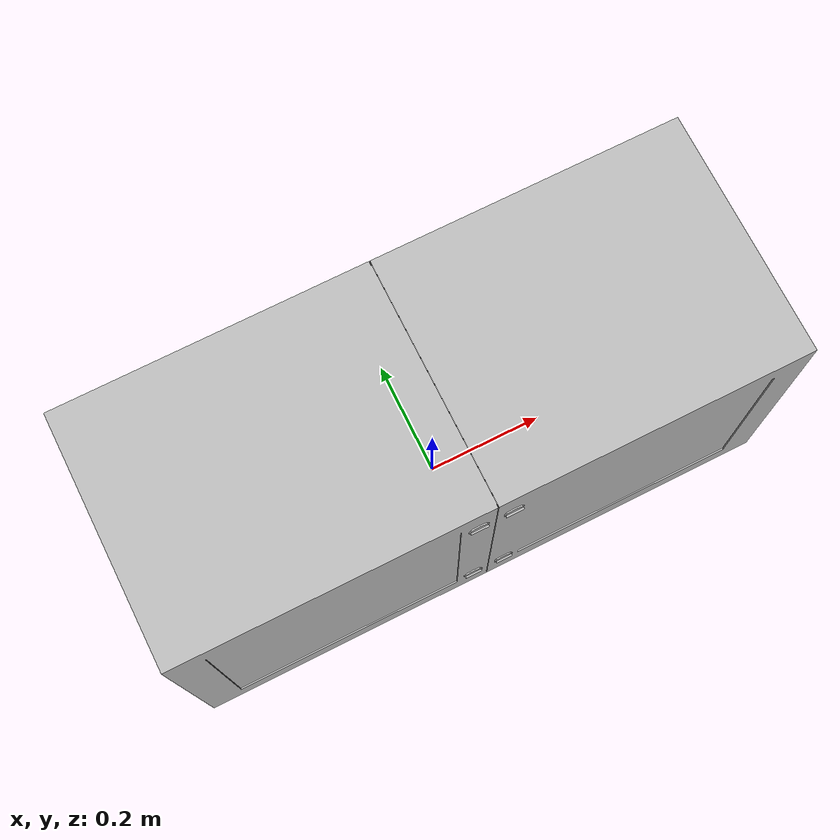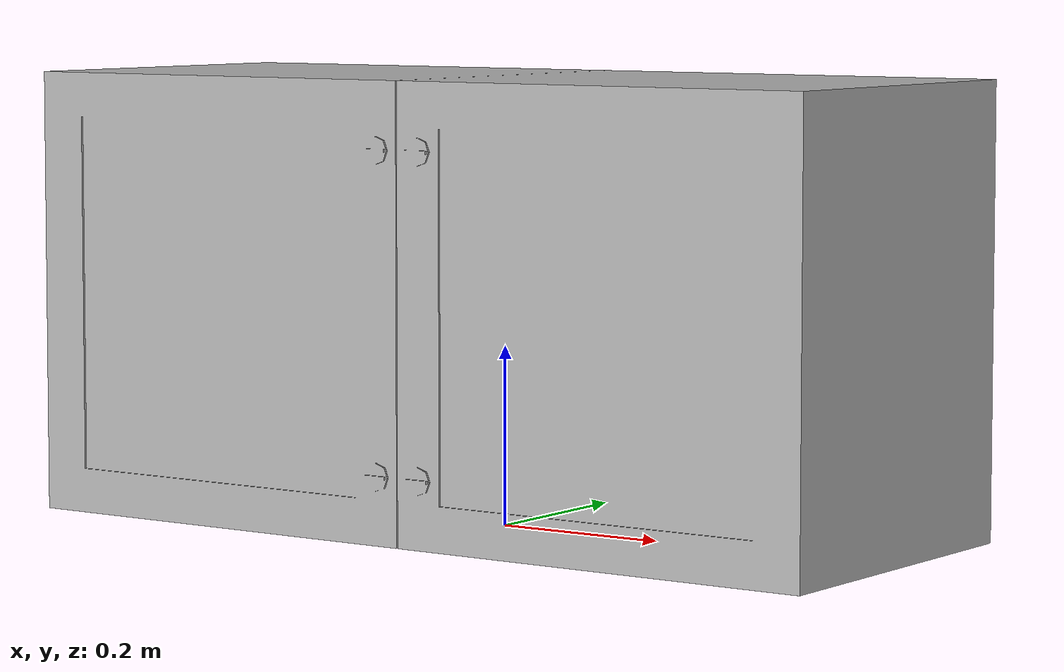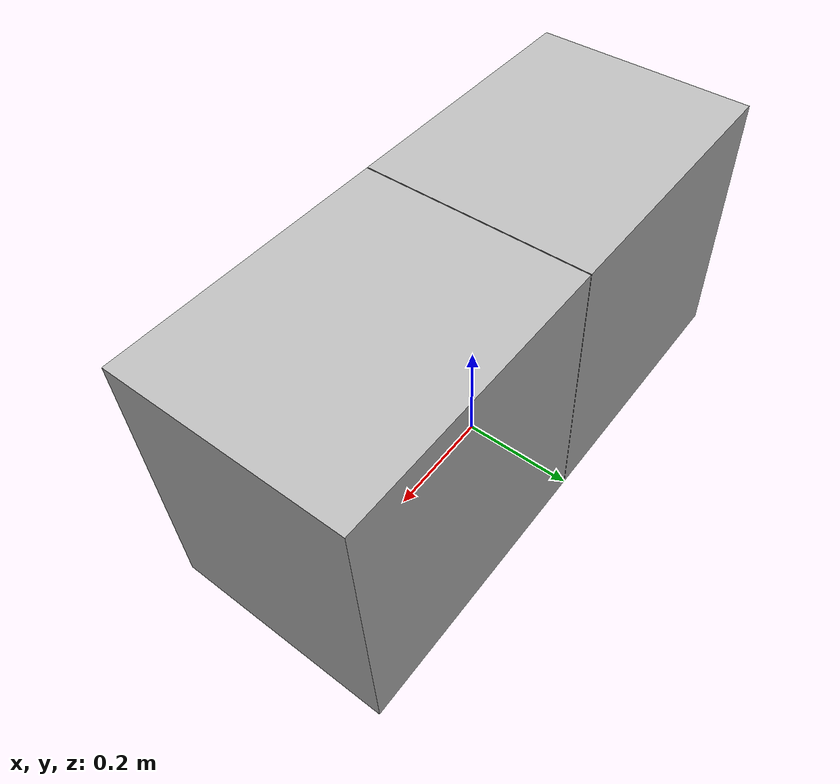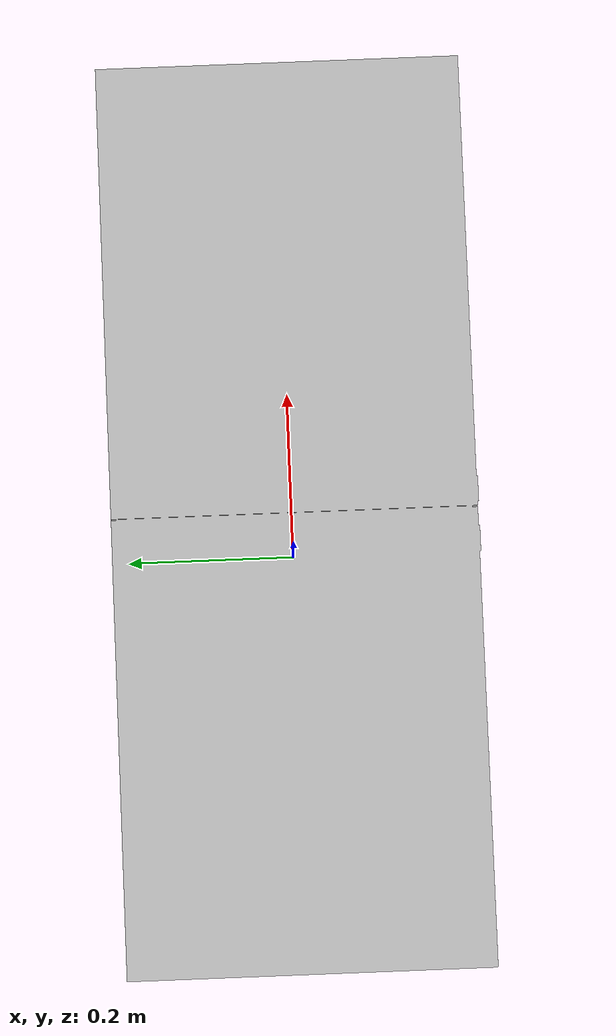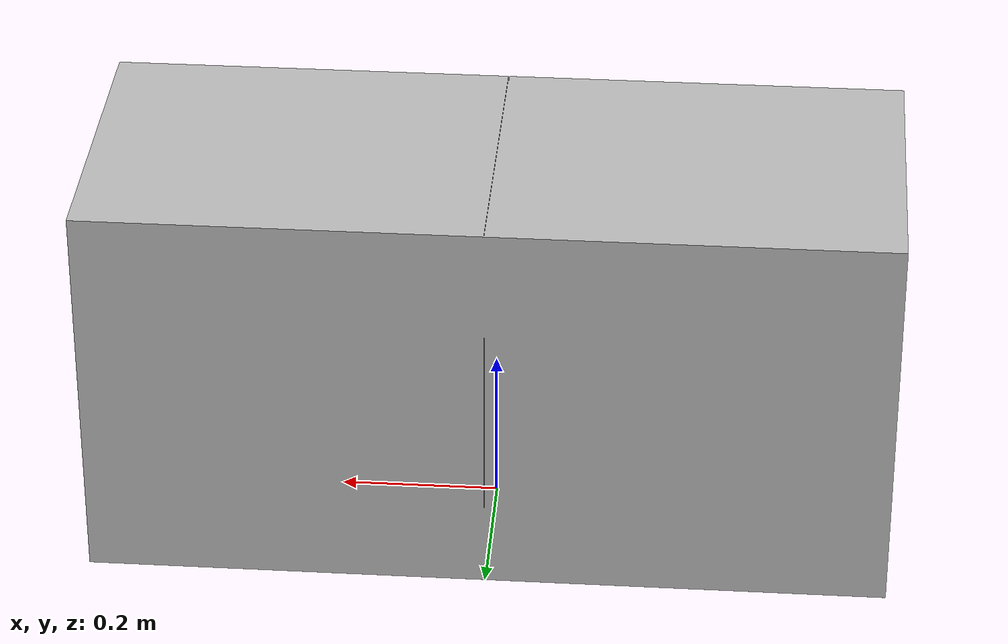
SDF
<sdf version="1.6">
  <model name="FreezerComp">
   <static>true</static>
    <link name="body">
      <pose>0 0 0 0 0 0</pose>

      <visual name="visual">
        <geometry>
          <mesh>
            <uri>model://FreezerComp/meshes/FreezerComp.obj</uri>
          </mesh>
        </geometry>
      </visual>

      <collision name="collision">
        <geometry>
          <mesh>
            <uri>model://FreezerComp/meshes/FreezerComp_Col.obj</uri>
          </mesh>
        </geometry>
      </collision>

    </link>
  </model>
</sdf>
